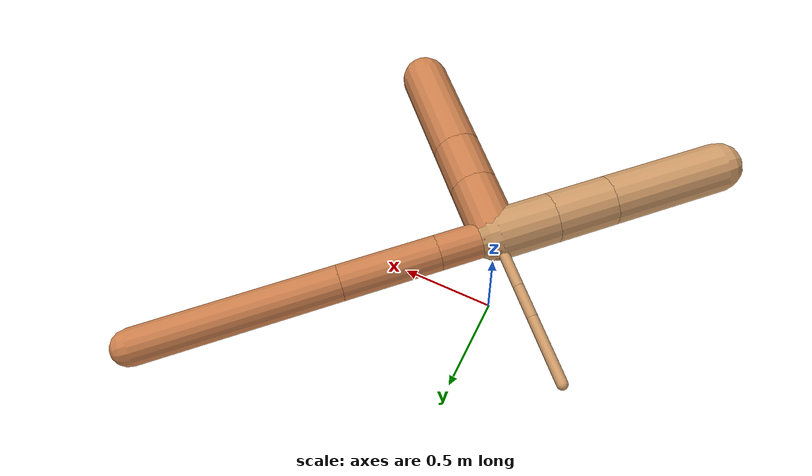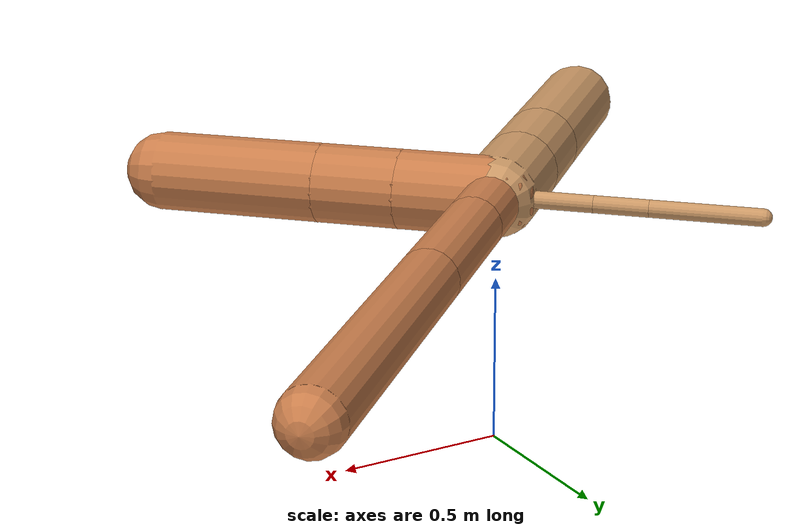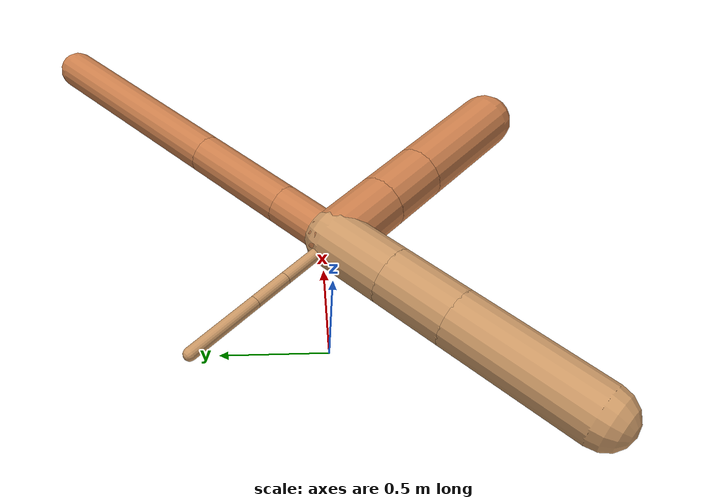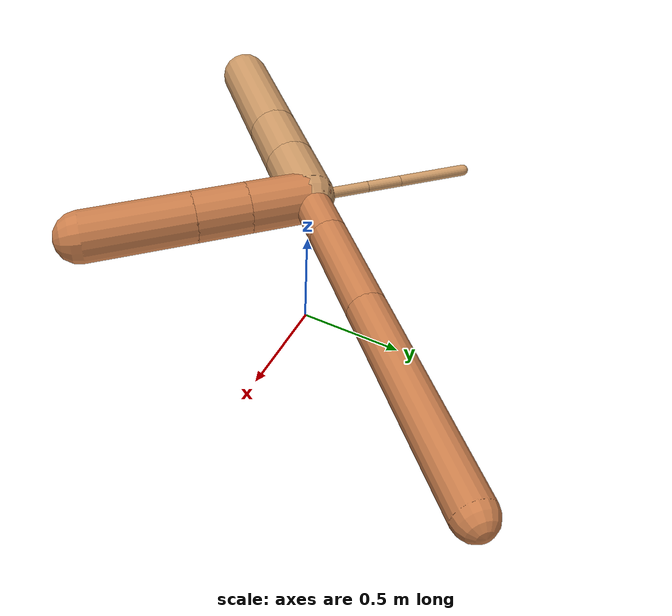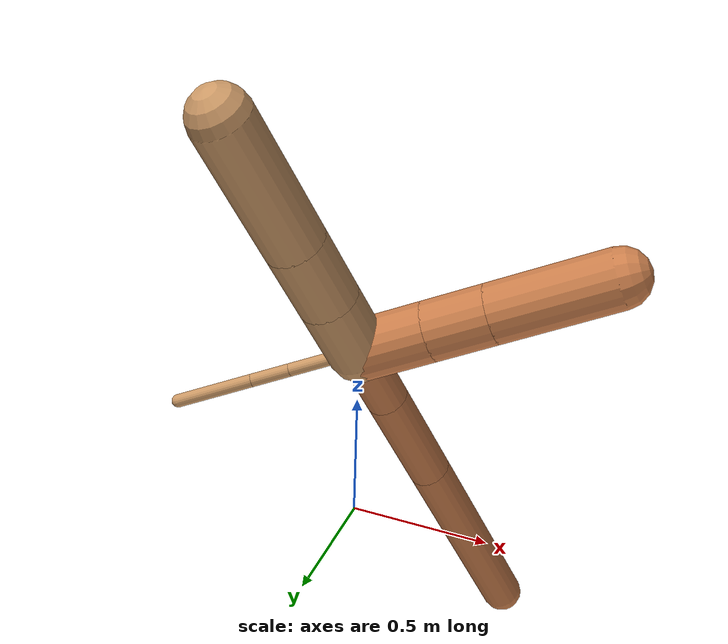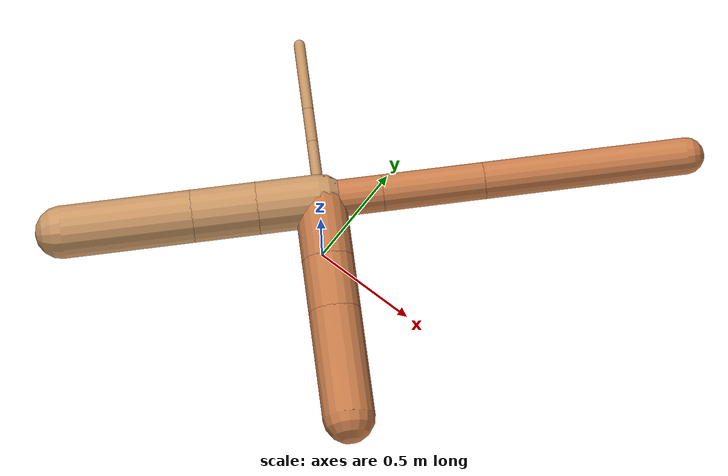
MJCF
<?xml version="1.0" ?>
<mujoco model="ant">

	<compiler angle="degree" coordinate="local" inertiafromgeom="true"/>

	<option integrator="RK4" timestep="0.01"/>

	<custom>

		<numeric data="0.0 0.0 0.55 1.0 0.0 0.0 0.0 0.0 1.0 0.0 -1.0 0.0 -1.0 0.0 1.0" name="init_qpos"/>

	</custom>

	<default>

		<joint armature="1" damping="1" limited="true"/>

		<geom conaffinity="0" condim="3" density="5.0" friction="1.5 0.1 0.1" margin="0.01" rgba="0.8 0.6 0.4 1"/>

	</default>

	<worldbody>

		<body name="torso" pos="0 0 0.75">

			<geom name="torso_geom" pos="0 0 0" size="0.0953237468432411" type="sphere"/>

			<!--joint armature="0" damping="0" limited="false" margin="0.01" name="root" pos="0 0 0" type="free"/-->

			<body name="front_left_leg" pos="0 0 0">

				<geom fromto="0 0 0 0.2 0.2 0" name="aux_1_geom" size="0.08385773755981354" type="capsule" rgba=".8 .5 .3 1"/>

				<body name="aux_1" pos="0.2 0.2 0">

					<joint axis="0 0 1" name="hip_1" pos="0.0 0.0 0.0" range="-40 40" type="hinge"/>

					<geom fromto="0 0 0 0.3250086843708464 0.3250086843708464 0" name="left_leg_geom" size="0.08385773755981354" type="capsule" rgba=".8 .5 .3 1"/>

					<body pos="0.3250086843708464 0.3250086843708464 0" name="front_left_foot">

						<joint axis="-1 1 0" name="ankle_1" pos="0.0 0.0 0.0" range="30 100" type="hinge"/>

						<geom fromto="0 0 0 0.6500173687416928 0.6500173687416928 0" name="left_ankle_geom" size="0.08385773755981354" type="capsule" rgba=".8 .5 .3 1"/>

					</body>

				</body>

			</body>

			<body name="front_right_leg" pos="0 0 0">

				<geom fromto="0 0 0 -0.2 0.2 0" name="aux_2_geom" size="0.025675434776713812" type="capsule"/>

				<body name="aux_2" pos="-0.2 0.2 0">

					<joint axis="0 0 1" name="hip_2" pos="0.0 0.0 0.0" range="-40 40" type="hinge"/>

					<geom fromto="0 0 0 -0.11257028709976141 0.11257028709976141 0" name="right_leg_geom" size="0.025675434776713812" type="capsule"/>

					<body pos="-0.11257028709976141 0.11257028709976141 0" name="front_right_foot">

						<joint axis="1 1 0" name="ankle_2" pos="0.0 0.0 0.0" range="-100 -30" type="hinge"/>

						<geom fromto="0 0 0 -0.22514057419952282 0.22514057419952282 0" name="right_ankle_geom" size="0.025675434776713812" type="capsule"/>

					</body>

				</body>

			</body>

			<body name="left_back_leg" pos="0 0 0">

				<geom fromto="0 0 0 -0.2 -0.2 0" name="aux_3_geom" size="0.11983009163454414" type="capsule"/>

				<body name="aux_3" pos="-0.2 -0.2 0">

					<joint axis="0 0 1" name="hip_3" pos="0.0 0.0 0.0" range="-40 40" type="hinge"/>

					<geom fromto="0 0 0 -0.2078399802028107 -0.2078399802028107 0" name="back_leg_geom" size="0.11983009163454414" type="capsule"/>

					<body pos="-0.2078399802028107 -0.2078399802028107 0" name="left_back_foot">

						<joint axis="-1 1 0" name="ankle_3" pos="0.0 0.0 0.0" range="-100 -30" type="hinge"/>

						<geom fromto="0 0 0 -0.4156799604056214 -0.4156799604056214 0" name="third_ankle_geom" size="0.11983009163454414" type="capsule"/>

					</body>

				</body>

			</body>

			<body name="right_back_leg" pos="0 0 0">

				<geom fromto="0 0 0 0.2 -0.2 0" name="aux_4_geom" size="0.11764694619297475" type="capsule" rgba=".8 .5 .3 1"/>

				<body name="aux_4" pos="0.2 -0.2 0">

					<joint axis="0 0 1" name="hip_4" pos="0.0 0.0 0.0" range="-40 40" type="hinge"/>

					<geom fromto="0 0 0 0.1736547351801272 -0.1736547351801272 0" name="rightback_leg_geom" size="0.11764694619297475" type="capsule" rgba=".8 .5 .3 1"/>

					<body pos="0.1736547351801272 -0.1736547351801272 0" name="right_back_foot">

						<joint axis="1 1 0" name="ankle_4" pos="0.0 0.0 0.0" range="30 100" type="hinge"/>

						<geom fromto="0 0 0 0.3473094703602544 -0.3473094703602544 0" name="fourth_ankle_geom" size="0.11764694619297475" type="capsule" rgba=".8 .5 .3 1"/>

					</body>

				</body>

			</body>

		</body>

	</worldbody>

	<actuator>

		<motor ctrllimited="true" ctrlrange="-1.0 1.0" joint="hip_4" gear="150"/>

		<motor ctrllimited="true" ctrlrange="-1.0 1.0" joint="ankle_4" gear="150"/>

		<motor ctrllimited="true" ctrlrange="-1.0 1.0" joint="hip_1" gear="150"/>

		<motor ctrllimited="true" ctrlrange="-1.0 1.0" joint="ankle_1" gear="150"/>

		<motor ctrllimited="true" ctrlrange="-1.0 1.0" joint="hip_2" gear="150"/>

		<motor ctrllimited="true" ctrlrange="-1.0 1.0" joint="ankle_2" gear="150"/>

		<motor ctrllimited="true" ctrlrange="-1.0 1.0" joint="hip_3" gear="150"/>

		<motor ctrllimited="true" ctrlrange="-1.0 1.0" joint="ankle_3" gear="150"/>

	</actuator>

</mujoco>
